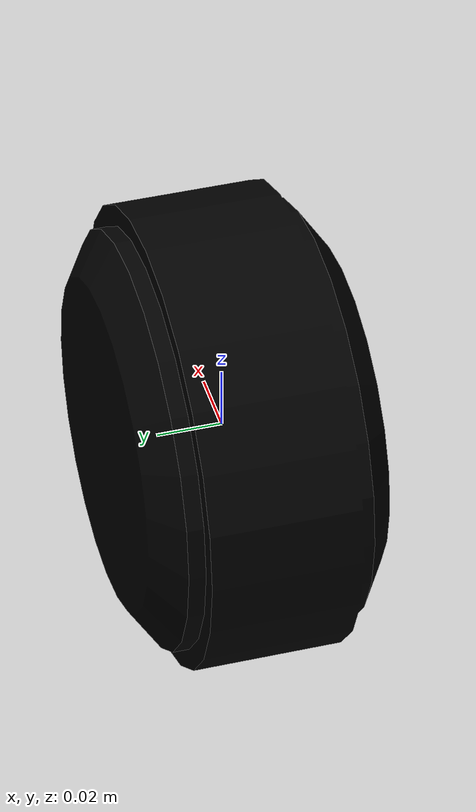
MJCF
<mujoco model="chassis_lwheel_front_link2">
  <default>
    <default class="visual">
      <geom group="2" type="mesh" contype="0" conaffinity="0"/>
    </default>
    <default class="collision">
      <geom group="3" type="mesh"/>
    </default>
  </default>
  <asset>
    <material name="material_chassis_lwheel_front_link2_0" specular="0.20000000000000004" shininess="1.0" rgba="0.00000000 0.00000000 0.00000000 1.0"/>
    <mesh file="chassis_lwheel_front_link2.obj"/>
  </asset>
  <worldbody>
    <body name="chassis_lwheel_front_link2">
      <geom material="material_chassis_lwheel_front_link2_0" mesh="chassis_lwheel_front_link2" class="visual"/>
      <geom mesh="chassis_lwheel_front_link2" class="collision"/>
    </body>
  </worldbody>
</mujoco>
